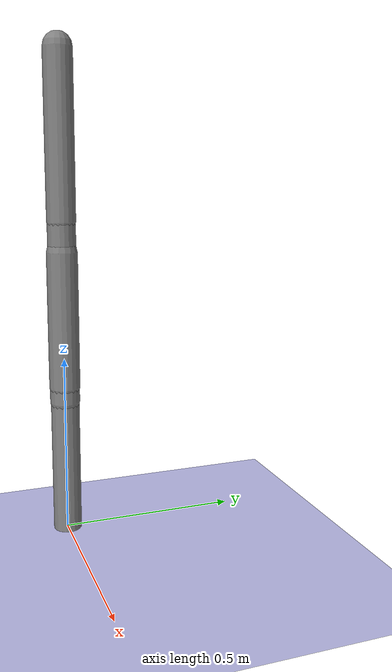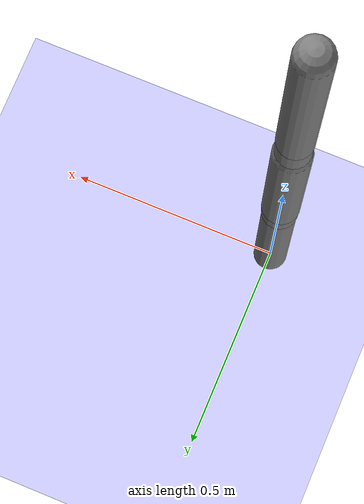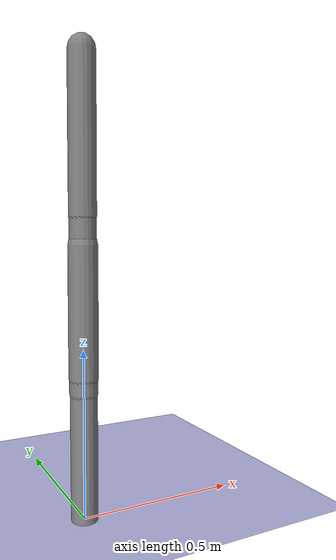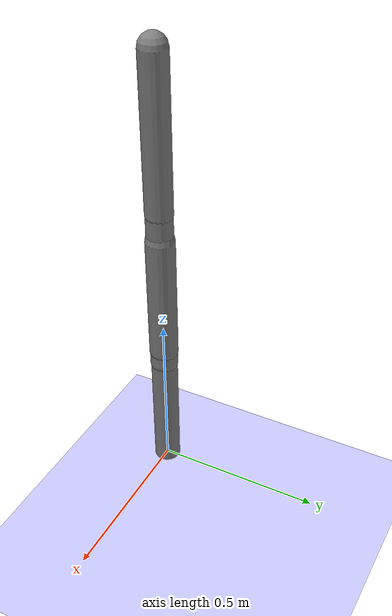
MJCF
<?xml version='1.0' encoding='UTF-8'?>
<mujoco model="robot_model">
  <worldbody>
    <light name="light" pos="0 -3 10" dir="0 0.5 -1" diffuse=".8 .8 .8" specular="0.1 0.1 0.1"/>
    <geom name="floor" type="plane" size="10.0 10.0 0.1" pos="0 0 0" rgba="0.8 0.8 1 1" contype="2" conaffinity="1"/>
    <body name="limb0" pos="0 0 0">
      <geom type="capsule" fromto="0 0 0 0 0 0.6" size="0.04" density="1006.969572973633" contype="1" conaffinity="2"/>
      <site type="sphere" size="0.01" name="limb0_site0" pos="0 0 0.3461445858697572"/>
      <site type="sphere" size="0.01" name="limb0_site1" pos="0 0 0.5044662501644708"/>
      <freejoint name="limb0_root"/>
      <body name="limb1" pos="0 0 0.3461445858697572">
        <geom type="capsule" fromto="0 0 0 0 0 0.11789116681523648" size="0.03350622500036012" density="601.2330562842756" contype="1" conaffinity="2"/>
        <site type="sphere" size="0.01" name="limb1_site0" pos="0 0 0.0735526269420766"/>
        <site type="sphere" size="0.01" name="limb1_site1" pos="0 0 0.03096609814270434"/>
        <site type="sphere" size="0.01" name="limb1_site2" pos="0 0 0.09601367094402079"/>
        <body name="limb2" pos="0 0 0.0735526269420766">
          <geom type="capsule" fromto="0 0 0 0 0 0.38231057733543733" size="0.04320126958942399" density="764.0354914470512" contype="1" conaffinity="2"/>
          <joint name="joint_limb1_limb2_0" type="hinge" axis="0 1 0" range="-79.19027832141104 79.19027832141104" damping="5.0"/>
        </body>
        <body name="limb3" pos="0 0 0.03096609814270434">
          <geom type="capsule" fromto="0 0 0 0 0 0.3449366956007403" size="0.04182995516077146" density="888.638751137447" contype="1" conaffinity="2"/>
          <site type="sphere" size="0.01" name="limb3_site0" pos="0 0 0.34476469369601037"/>
          <body name="limb4" pos="0 0 0.34476469369601037">
            <geom type="capsule" fromto="0 0 0 0 0 0.4327768185870699" size="0.03330945621478727" density="805.3110051951184" contype="1" conaffinity="2"/>
            <joint name="joint_limb3_limb4_0" type="hinge" axis="0 1 0" range="-97.60316524447805 97.60316524447805" damping="5.0"/>
          </body>
          <joint name="joint_limb1_limb3_0" type="hinge" axis="1 0 0" range="-76.57739072162552 76.57739072162552" damping="5.0"/>
        </body>
        <body name="limb5" pos="0 0 0.09601367094402079">
          <geom type="capsule" fromto="0 0 0 0 0 0.5" size="0.03926549675410116" density="1058.8769662480563" contype="1" conaffinity="2"/>
          <site type="sphere" size="0.01" name="limb5_site0" pos="0 0 0.2560745598104502"/>
          <site type="sphere" size="0.01" name="limb5_site1" pos="0 0 0.44076882258336086"/>
          <body name="limb6" pos="0 0 0.2560745598104502">
            <geom type="capsule" fromto="0 0 0 0 0 0.10132629865508748" size="0.028272016099352537" density="685.6739189435759" contype="1" conaffinity="2"/>
            <joint name="joint_limb5_limb6_0" type="hinge" axis="1 0 0" range="-39.46093477322345 39.46093477322345" damping="5.0"/>
          </body>
          <body name="limb7" pos="0 0 0.44076882258336086">
            <geom type="capsule" fromto="0 0 0 0 0 0.4558236432736898" size="0.040393786555888975" density="1054.6511241400187" contype="1" conaffinity="2"/>
            <joint name="joint_limb5_limb7_0" type="hinge" axis="0 1 0" range="-118.69762092772474 118.69762092772474" damping="5.0"/>
          </body>
          <joint name="joint_limb1_limb5_0" type="hinge" axis="0 1 0" range="-100.19138469108644 100.19138469108644" damping="5.0"/>
        </body>
        <joint name="joint_limb0_limb1_0" type="hinge" axis="0 1 0" range="-118.43465417951464 118.43465417951464" damping="5.0"/>
      </body>
      <body name="limb8" pos="0 0 0.5044662501644708">
        <geom type="capsule" fromto="0 0 0 0 0 0.16901349670638882" size="0.029773060920250092" density="867.1563718257595" contype="1" conaffinity="2"/>
        <joint name="joint_limb0_limb8_0" type="hinge" axis="0 1 0" range="-63.22844417036358 63.22844417036358" damping="5.0"/>
      </body>
    </body>
  </worldbody>
  <actuator>
    <position name="position_actuator_joint_limb0_limb1_0" joint="joint_limb0_limb1_0" gear="1.3172310151340172" inheritrange="1" kp="10.0"/>
    <position name="position_actuator_joint_limb1_limb2_0" joint="joint_limb1_limb2_0" gear="1.0104857860709995" inheritrange="1" kp="10.0"/>
    <position name="position_actuator_joint_limb1_limb3_0" joint="joint_limb1_limb3_0" gear="1.9786544527946286" inheritrange="1" kp="10.0"/>
    <position name="position_actuator_joint_limb3_limb4_0" joint="joint_limb3_limb4_0" gear="1.7459471619076385" inheritrange="1" kp="10.0"/>
    <position name="position_actuator_joint_limb1_limb5_0" joint="joint_limb1_limb5_0" gear="1.233825117296027" inheritrange="1" kp="10.0"/>
    <position name="position_actuator_joint_limb5_limb6_0" joint="joint_limb5_limb6_0" gear="1.6699171564828723" inheritrange="1" kp="10.0"/>
    <position name="position_actuator_joint_limb5_limb7_0" joint="joint_limb5_limb7_0" gear="1.7310688920449273" inheritrange="1" kp="10.0"/>
    <position name="position_actuator_joint_limb0_limb8_0" joint="joint_limb0_limb8_0" gear="1.068427433655958" inheritrange="1" kp="10.0"/>
  </actuator>
</mujoco>
